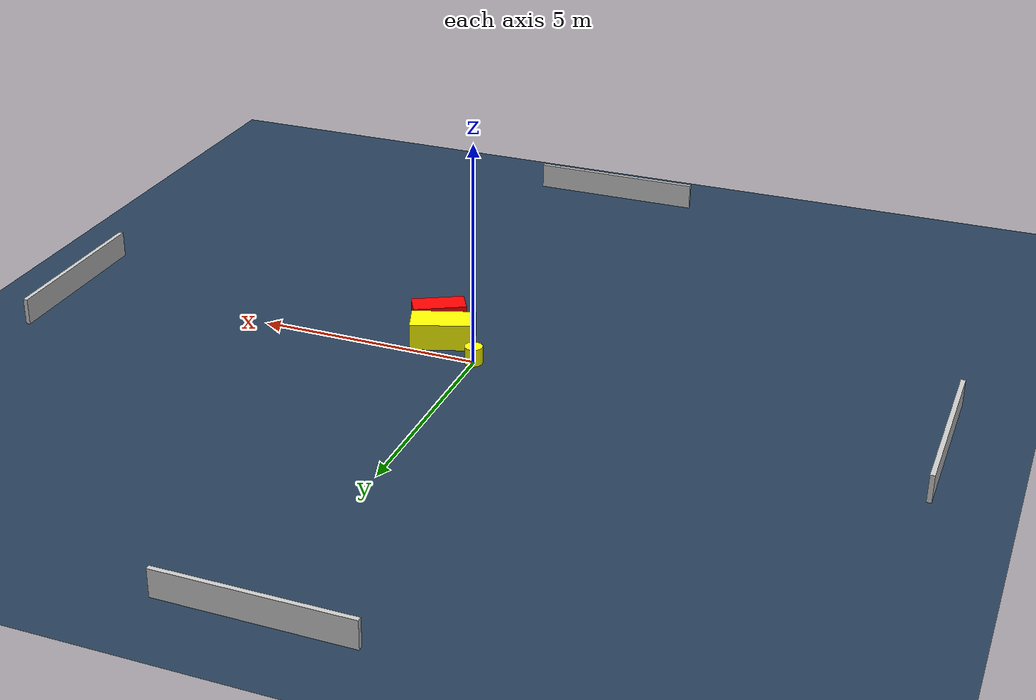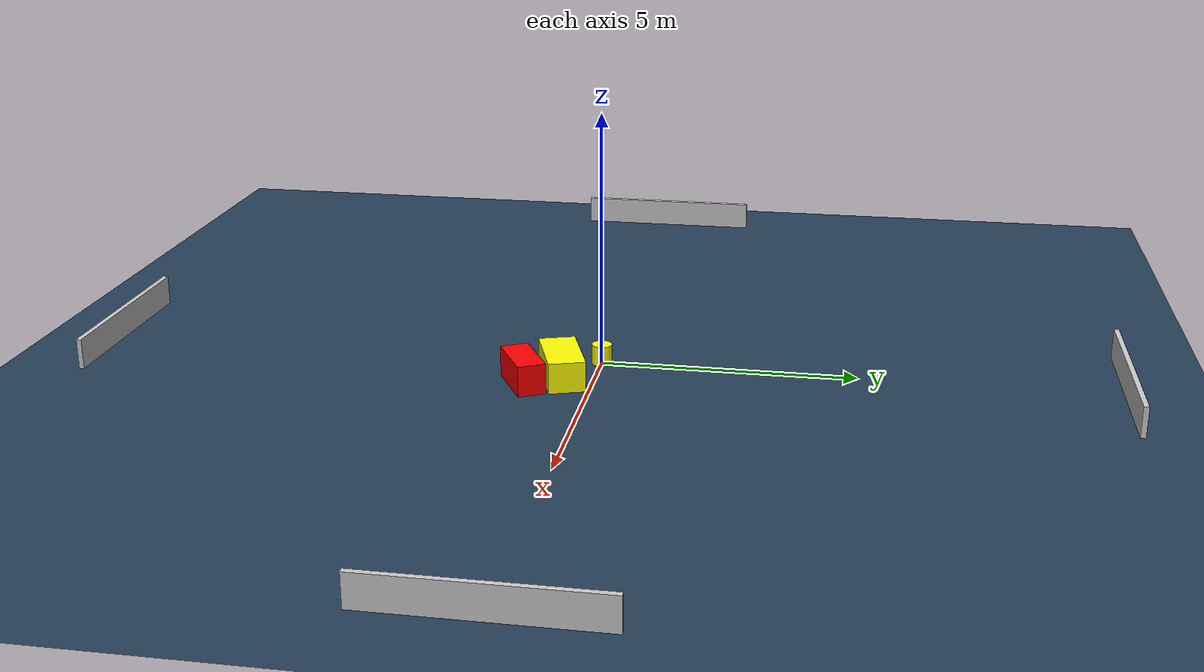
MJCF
<?xml version="1.0" ?>
<mujoco model="generated_environment">
  <option timestep="0.01" integrator="RK4" cone="elliptic"/>
  <default>
    <geom density="1"/>
  </default>
  <asset>
    <texture builtin="gradient" height="3072" name="skybox" rgb1="0.3 0.5 0.7" rgb2="0 0 0" type="skybox" width="512"/>
    <texture builtin="checker" height="300" name="groundplane" rgb1="0.2 0.3 0.4" rgb2="0.1 0.2 0.3" type="2d" width="300"/>
    <material name="groundplane" reflectance="0.2" texrepeat="5 5" texture="groundplane"/>
  </asset>
  <worldbody>
    <light dir="0 0 -1" directional="true" pos="0 0 1.5"/>
    <geom condim="3" friction="0.5 0.005 0.001" material="groundplane" name="floor" pos="0 0 0" size="0 0 0.05" type="plane"/>
    <body name="walls">
      <geom name="wall_1" condim="4" pos="-10.0 0.0 0.3" rgba="0.800000011920929 0.800000011920929 0.800000011920929 1.0" size="0.05 2.0 0.3" type="box"/>
      <geom name="wall_2" condim="4" pos="10.0 0.0 0.3" rgba="0.800000011920929 0.800000011920929 0.800000011920929 1.0" size="0.05 2.0 0.3" type="box"/>
      <geom name="wall_3" condim="4" pos="0.0 -10.0 0.3" rgba="0.800000011920929 0.800000011920929 0.800000011920929 1.0" size="2.0 0.05 0.3" type="box"/>
      <geom name="wall_4" condim="4" pos="0.0 10.0 0.3" rgba="0.800000011920929 0.800000011920929 0.800000011920929 1.0" size="2.0 0.05 0.3" type="box"/>
    </body>
    <body name="robot">
      <joint name="joint_x" type="slide" pos="0 0 0" axis="1 0 0"/>
      <joint name="joint_y" type="slide" pos="0 0 0" axis="0 1 0"/>
      <geom name="robot" type="cylinder" pos="0.0 0.0 0.2" size="0.2 0.2 0.0" mass="5.0" friction="1.0 0.005 0.0001" condim="4" rgba="1.0 1.0 0.0 1.0"/>
    </body>
    <body name="obstacle_1_movable">
      <geom name="obstacle_1_movable" condim="4" pos="0.9755256558398027 -0.613609573281016 0.3" euler="0 0 109.02556244500643" friction="0.0 0.005 0.001" rgba="1.0 1.0 0.0 1.0" size="0.358851173246896 0.705503290041225 0.3" type="box" mass="0.1"/>
      <joint type="free"/>
    </body>
    <body name="obstacle_2_static">
      <geom name="obstacle_2_static" condim="4" pos="1.3557734498119078 -1.2959135896534675 0.3" euler="0 0 298.73458363939204" friction="0.0 0.005 0.001" rgba="1.0 0.0 0.0 1.0" size="0.27537614109502007 0.593129076801584 0.3" type="box"/>
    </body>
  </worldbody>
  <actuator>
    <motor name="actuator_x" joint="joint_x" gear="1" ctrlrange="-1 1"/>
    <motor name="actuator_y" joint="joint_y" gear="1" ctrlrange="-1 1"/>
  </actuator>
</mujoco>
